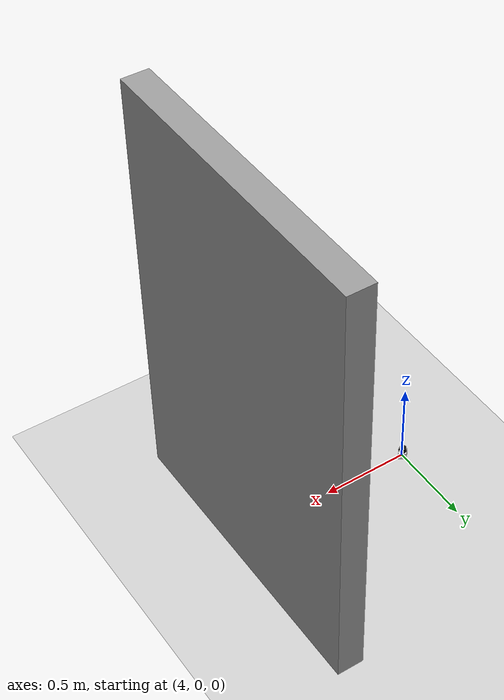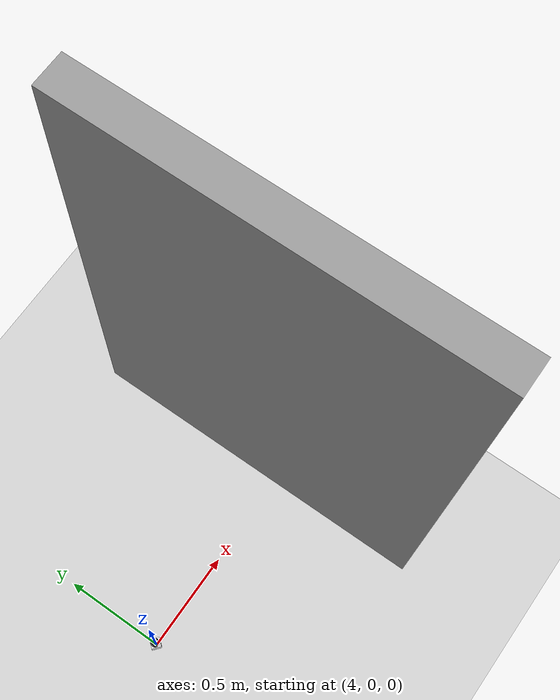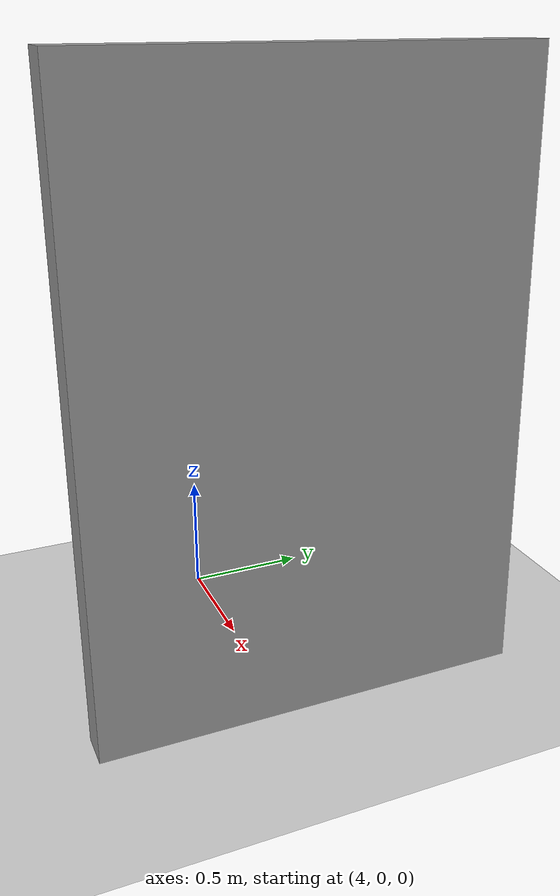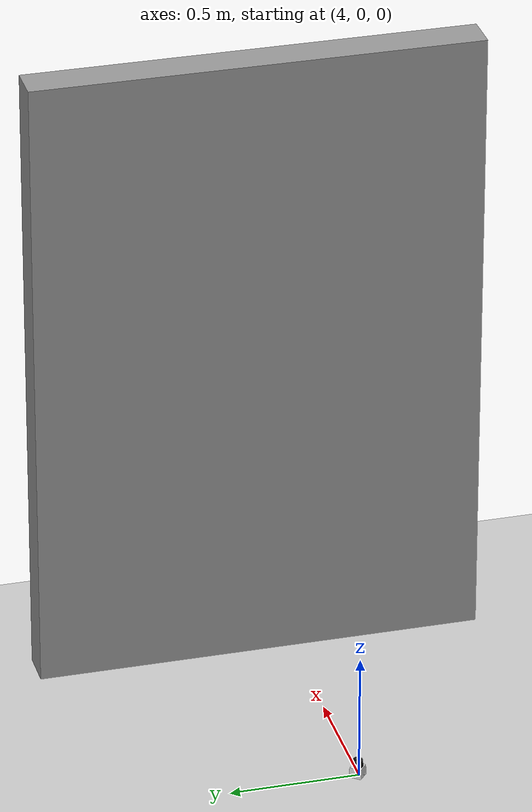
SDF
<sdf version="1.6">
 <world name="default">
  <light name="sun" type="directional">
   <pose>0 0 10 0 -0 0</pose>
   <diffuse>0.8 0.8 0.8 1</diffuse>
   <specular>0.2 0.2 0.2 1</specular>
   <attenuation>
    <range>1000</range>
    <constant>0.9</constant>
    <linear>0.01</linear>
    <quadratic>0.001</quadratic>
   </attenuation>
   <direction>-0.5 0.1 -0.9</direction>
  </light>
  <model name="ground_plane">
   <static>1</static>
   <link name="link">
    <collision name="collision">
     <geometry><plane><normal>0 0 1</normal><size>100 100</size></plane></geometry>
     <surface>
      <contact><collide_bitmask>65535</collide_bitmask></contact>
      <friction><ode><mu>100</mu><mu2>50</mu2></ode></friction>
     </surface>
    </collision>
    <visual name="visual">
     <cast_shadows>0</cast_shadows>
     <geometry><plane><normal>0 0 1</normal><size>100 100</size></plane></geometry>
     <material>
      <script><uri>file://media/materials/scripts/gazebo.material</uri><name>Gazebo/Grey</name></script>
     </material>
    </visual>
   </link>
  </model>
  <gravity>0 0 -9.8</gravity>
  <magnetic_field>6e-06 2.3e-05 -4.2e-05</magnetic_field>
  <atmosphere type="adiabatic"/>
  <physics name="default_physics" default="0" type="ode">
   <max_step_size>0.001</max_step_size>
   <real_time_factor>1</real_time_factor>
   <real_time_update_rate>1000</real_time_update_rate>
  </physics>
  <scene><ambient>0.4 0.4 0.4 1</ambient><background>0.7 0.7 0.7 1</background><shadows>1</shadows></scene>
  <audio><device>default</device></audio>
  <spherical_coordinates>
   <surface_model>EARTH_WGS84</surface_model>
   <latitude_deg>0</latitude_deg>
   <longitude_deg>0</longitude_deg>
   <elevation>0</elevation>
   <heading_deg>0</heading_deg>
  </spherical_coordinates>
  <model name="hokuyo">
   <pose>4.00049 0.006592 0.035 1e-06 6e-06 -0.690926</pose>
   <link name="link">
    <inertial>
     <mass>0.1</mass>
     <inertia><ixx>1</ixx><ixy>0</ixy><ixz>0</ixz><iyy>1</iyy><iyz>0</iyz><izz>1</izz></inertia>
    </inertial>
    <visual name="visual"><geometry><mesh><uri>model://hokuyo/meshes/hokuyo.dae</uri></mesh></geometry></visual>
    <collision name="collision-base">
     <pose>0 0 -0.0145 0 -0 0</pose>
     <geometry><box><size>0.05 0.05 0.041</size></box></geometry>
    </collision>
    <collision name="collision-top">
     <pose>0 0 0.0205 0 -0 0</pose>
     <geometry><cylinder><radius>0.021</radius><length>0.029</length></cylinder></geometry>
    </collision>
    <sensor type="gpu_ray" name="head_hokuyo_sensor">
     <visualize>false</visualize>
     <update_rate>40</update_rate>
     <ray>
      <scan>
       <horizontal>
        <samples>720</samples>
        <resolution>1</resolution>
        <min_angle>-1.570796</min_angle>
        <max_angle>1.570796</max_angle>
       </horizontal>
      </scan>
      <range><min>0.10</min><max>30.0</max><resolution>0.01</resolution></range>
      <noise><type>gaussian</type><mean>0.0</mean><stddev>0.01</stddev></noise>
     </ray>
     <plugin name="gazebo_ros_head_hokuyo_controller" filename="libgazebo_ros_gpu_laser.so">
      <topicName>/myworld/laser/scan</topicName>
      <frameName>hokuyo</frameName>
     </plugin>
    </sensor>
   </link>
  </model>
  <model name="wall">
   <pose>5.05379 0.123716 0 0 -0 0</pose>
   <link name="Wall_1">
    <collision name="Wall_1_Collision">
     <geometry><box><size>1.75 0.15 2.5</size></box></geometry>
     <pose>0 0 1.25 0 -0 0</pose>
    </collision>
    <visual name="Wall_1_Visual">
     <pose>0 0 1.25 0 -0 0</pose>
     <geometry><box><size>1.75 0.15 2.5</size></box></geometry>
     <material>
      <script><uri>file://media/materials/scripts/gazebo.material</uri><name>Gazebo/Grey</name></script>
      <ambient>1 1 1 1</ambient>
     </material>
     <meta><layer>0</layer></meta>
    </visual>
    <pose>0 0 0 0 -0 -1.5708</pose>
   </link>
   <static>1</static>
  </model>
 </world>
</sdf>
